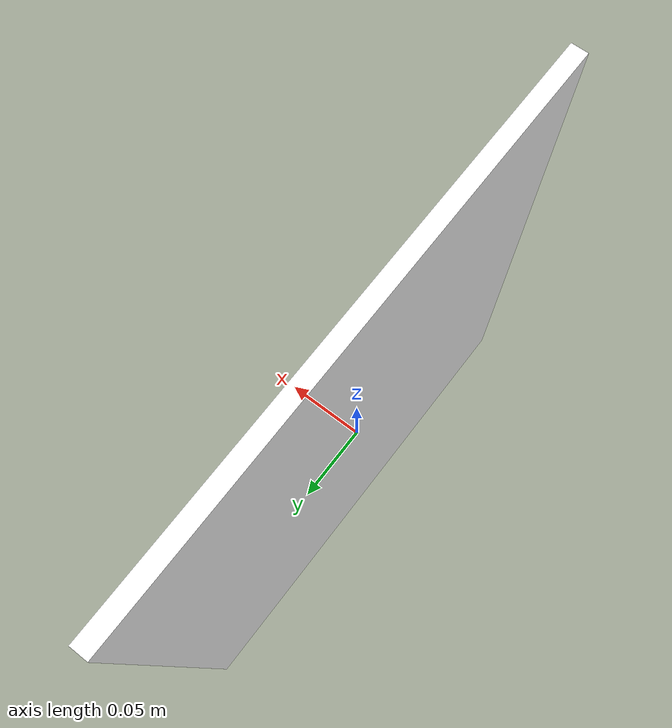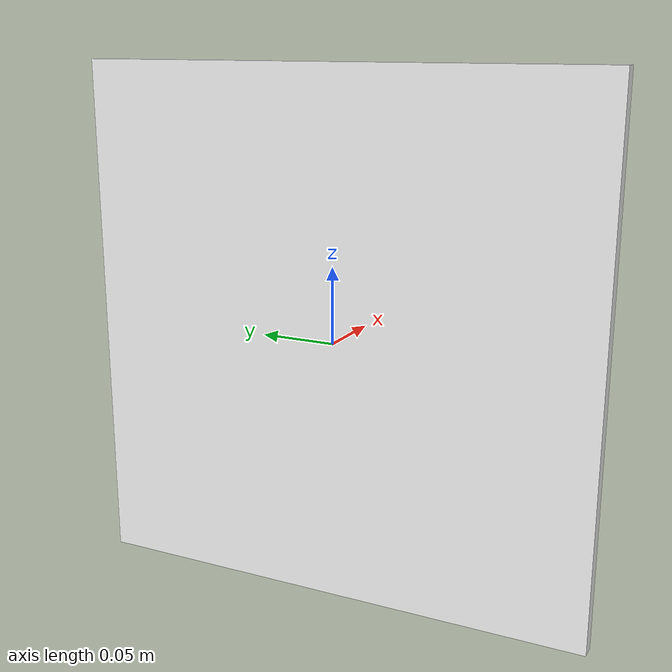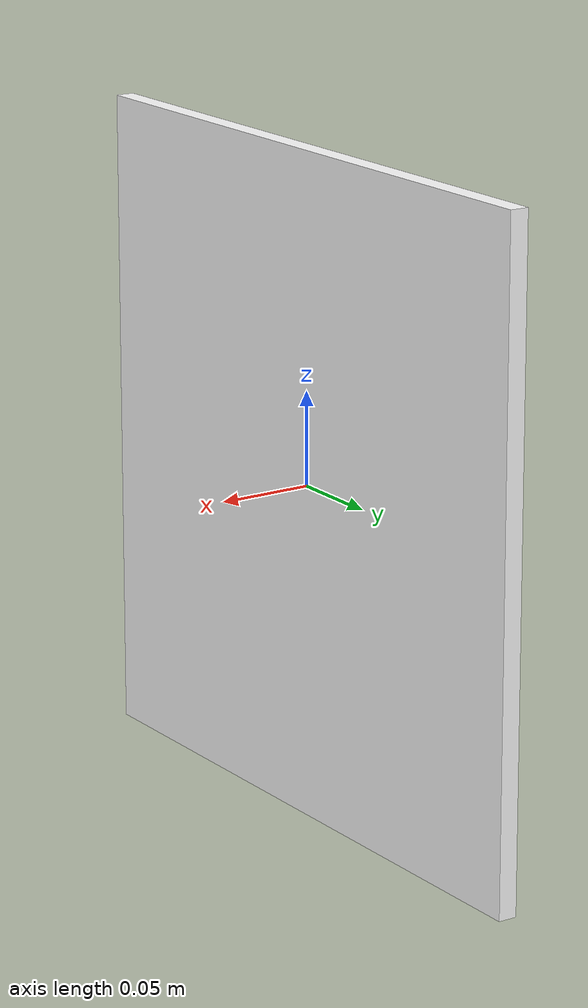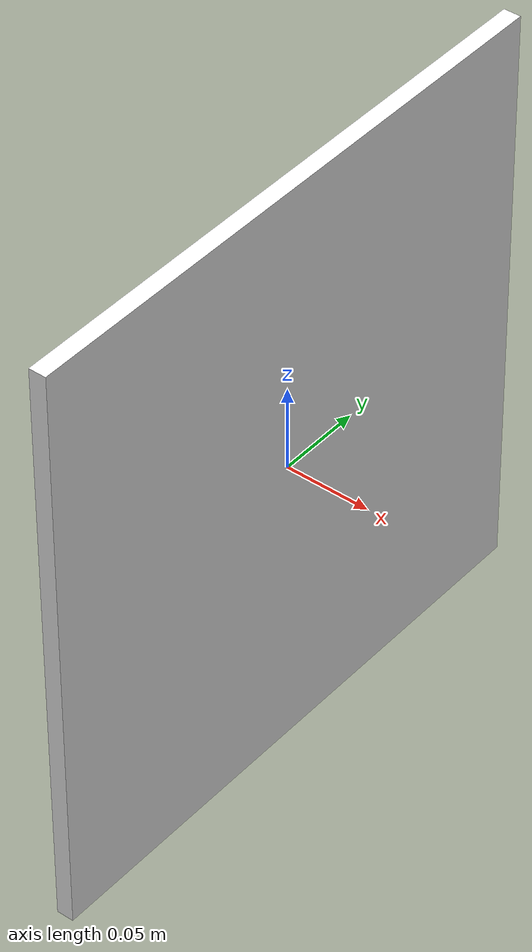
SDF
<?xml version="1.0" ?>
<sdf version="1.6">
  <model name="load_bay_marker">
    <static>true</static>
    <link name="link">
      <visual name="visual">
        <geometry>
          <box>
            <size>0.01 0.35 0.35</size>
          </box>
        </geometry>
        <material>
          <diffuse>1 1 1 1</diffuse>
          <specular>0.2 0.2 0.2 1</specular>
          <pbr>
            <metal>
              <albedo_map>model://load_bay_marker/materials/textures/marker_0.png</albedo_map>
            </metal>
          </pbr>
          <script>
            <uri>model://load_bay_marker/materials/scripts</uri>
            <uri>model://load_bay_marker/materials/textures</uri>
            <name>LoadBayMarker/Marker0</name>
          </script>
        </material>
      </visual>
      <collision name="collision">
        <geometry>
          <box>
            <size>0.01 0.35 0.35</size>
          </box>
        </geometry>
      </collision>
    </link>
  </model>
</sdf>
